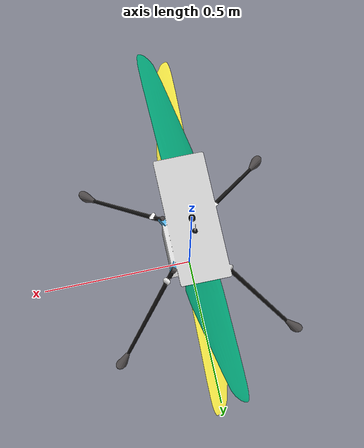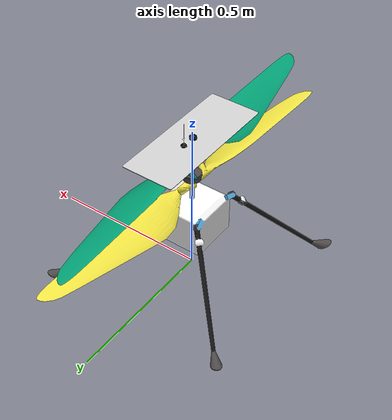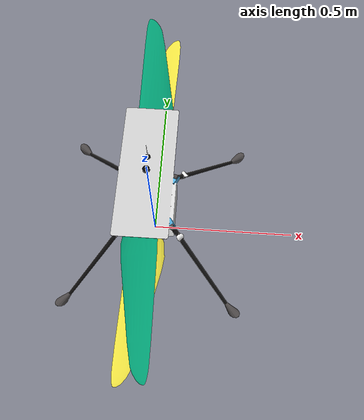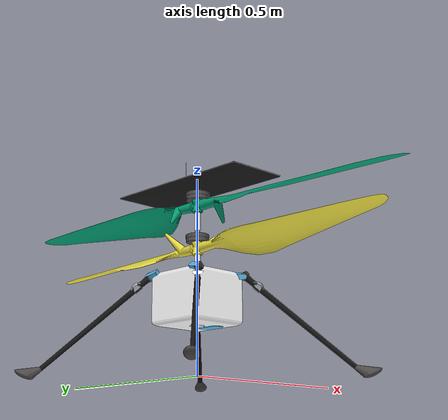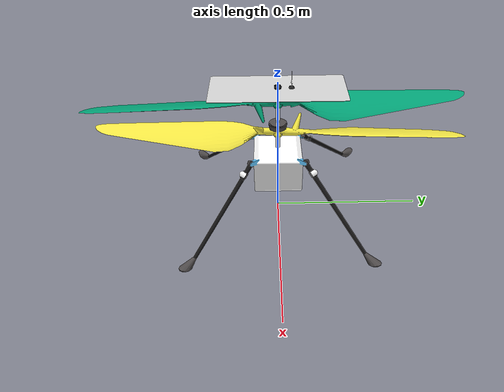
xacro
<?xml version="1.0"?>
<robot name="helicopter" xmlns:xacro="http://www.ros.org/wiki/xacro">

    <xacro:include filename="$(find simulation)/models/ingenuity_helicopter/urdf/helicopter.gazebo" />

    <link name="base_link"></link>
    <link name="helicopter_body">
        <collision>
            <origin xyz="0 0 0" rpy="0 0 0"></origin>
            <geometry>
                <mesh filename="package://simulation/models/ingenuity_helicopter/meshes/body.dae"
                    scale="1 1 1" />
            </geometry>
        </collision>
        <visual>
            <origin xyz="0 0 0" rpy="0 0 0"></origin>
            <geometry>
                <mesh filename="package://simulation/models/ingenuity_helicopter/meshes/body.dae"
                    scale="1 1 1" />
            </geometry>
        </visual>
        <inertial>
            <origin xyz="0 0 0"
                rpy="0 0 0" />
            <mass value="1.8" />
            <inertia ixx="2.56" ixy="0" ixz="0" iyy="2.56" iyz="0" izz="2.56" />
        </inertial>
    </link>
    <link name="propellor_up">
        <collision>
            <origin xyz="0 0 0" rpy="0 0 0"></origin>
            <geometry>
                <mesh
                    filename="package://simulation/models/ingenuity_helicopter/meshes/rotor_up.dae"
                    scale="1 1 1" />
            </geometry>
        </collision>
        <visual>
            <origin xyz="0 0 0" rpy="0 0 0"></origin>
            <geometry>
                <mesh
                    filename="package://simulation/models/ingenuity_helicopter/meshes/rotor_up.dae"
                    scale="1 1 1" />
            </geometry>
        </visual>
        <inertial>
            <origin xyz="0 0 0"
                rpy="0 0 0" />
            <mass value="1.8" />
            <inertia ixx="0.42" ixy="0" ixz="0" iyy="0.42" iyz="0" izz="0.42" />
        </inertial>
    </link>
    <link name="propellor_down">
        <collision>
            <origin xyz="0 0 0" rpy="0 0 0"></origin>
            <geometry>
                <mesh
                    filename="package://simulation/models/ingenuity_helicopter/meshes/rotor_down.dae"
                    scale="1 1 1" />
            </geometry>
        </collision>
        <visual>
            <origin xyz="0 0 0" rpy="0 0 0"></origin>
            <geometry>
                <mesh
                    filename="package://simulation/models/ingenuity_helicopter/meshes/rotor_down.dae"
                    scale="1 1 1" />
            </geometry>
        </visual>
        <inertial>
            <origin xyz="0 0 0"
                rpy="0 0 0" />
            <mass value="1.8" />
            <inertia ixx="0.42" ixy="0" ixz="0" iyy="0.42" iyz="0" izz="0.42" />
        </inertial>
    </link>
    <joint name="body_propellor_up_joint" type="continuous">
        <parent link="helicopter_body" />
        <child link="propellor_up" />
        <origin rpy="0 0 0" xyz="0 0 0.46" />
        <axis xyz="0 0 1" />
        <dynamics damping="0.0" friction="0.0" />
    </joint>
    <joint name="body_propellor_down_joint" type="continuous">
        <parent link="helicopter_body" />
        <child link="propellor_down" />
        <origin rpy="0 0 0" xyz="0 0 0.35" />
        <axis xyz="0 0 1" />
        <dynamics damping="0.0" friction="0.0" />
    </joint>
    <joint name="base_link_body_joint" type="fixed">
        <parent link="base_link"/>
        <child link="helicopter_body"/>
        <origin xyz="0 0 0" rpy="0 0 0"/>
		<axis xyz="0 0 1" />
    </joint>

    <transmission name="helicopter_body_propellor_up_trans">
        <type>transmission_interface/SimpleTransmission</type>
        <joint name="body_propellor_up_joint">
            <hardwareInterface>hardware_interface/VelocityJointInterface</hardwareInterface>
        </joint>
        <actuator name="propellor_up_motor">
            <hardwareInterface>hardware_interface/EffortJointInterface</hardwareInterface>
            <mechanicalReduction>1</mechanicalReduction>
        </actuator>
    </transmission>
    <transmission name="helicopter_body_propellor_down_trans">
        <type>transmission_interface/SimpleTransmission</type>
        <joint name="body_propellor_down_joint">
            <hardwareInterface>hardware_interface/VelocityJointInterface</hardwareInterface>
        </joint>
        <actuator name="propellor_down_motor">
            <hardwareInterface>hardware_interface/EffortJointInterface</hardwareInterface>
            <mechanicalReduction>1</mechanicalReduction>
        </actuator>
    </transmission>
</robot>
